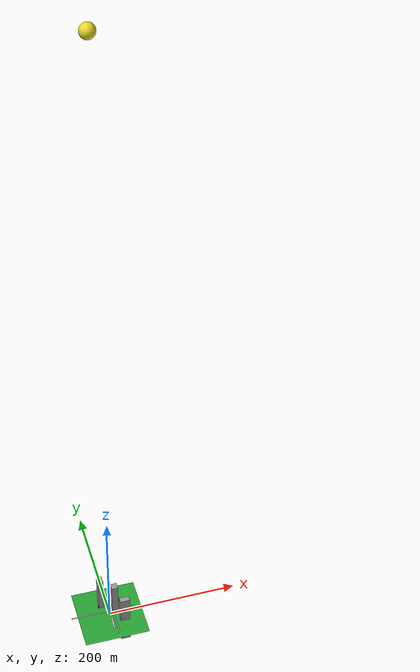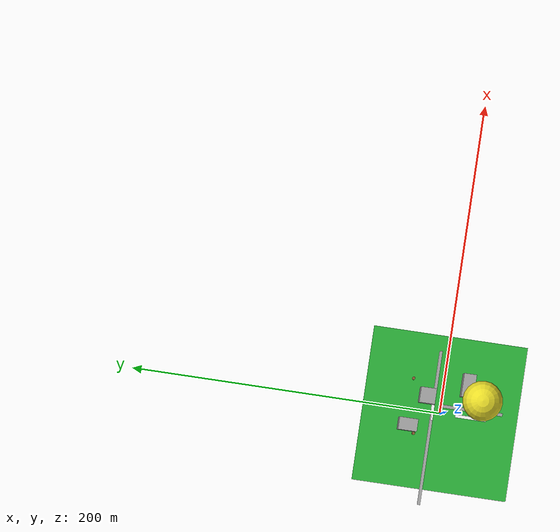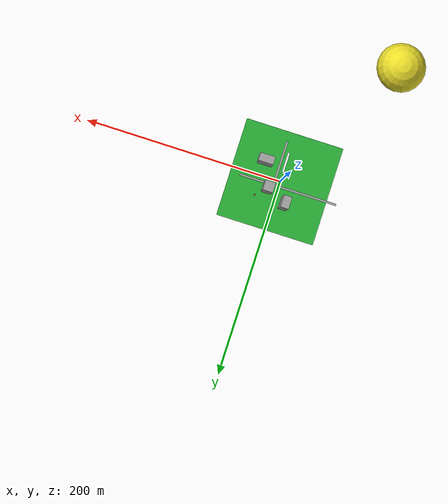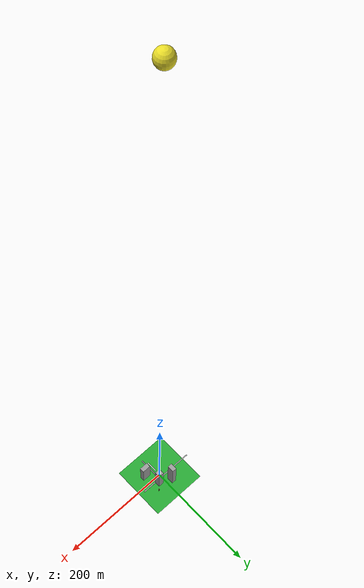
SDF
<?xml version="1.0" ?>
<sdf version="1.6">
  <world name="default">

    <!-- Define the sun -->
    <model name="sun">
      <pose>0 0 1000 0 0 0</pose>
      <link name="link">
        <visual name="visual">
          <geometry>
            <sphere>
              <radius>10</radius>
            </sphere>
          </geometry>
          <material>
            <script>
              <uri>model://sun/materials/scripts</uri>
              <uri>model://sun/materials/textures</uri>
              <name>sun/yellow</name>
            </script>
          </material>
        </visual>
      </link>
    </model>

    <!-- Define buildings -->
    <model name="building1">
      <pose>10 10 0 0 0 0</pose>
      <link name="link">
        <visual name="visual">
          <geometry>
            <box>
              <size>10 10 100</size>
            </box>
          </geometry>
          <material>
            <script>
              <uri>model://building1/materials/scripts</uri>
              <uri>model://building1/materials/textures</uri>
              <name>building1/gray</name>
            </script>
          </material>
        </visual>
      </link>
    </model>

    <model name="building2">
      <pose>-10 20 0 0 0 0</pose>
      <link name="link">
        <visual name="visual">
          <geometry>
            <box>
              <size>8 12 120</size>
            </box>
          </geometry>
          <material>
            <script>
              <uri>model://building2/materials/scripts</uri>
              <uri>model://building2/materials/textures</uri>
              <name>building2/gray</name>
            </script>
          </material>
        </visual>
      </link>
    </model>

    <!-- Add more buildings -->
    <model name="building3">
      <pose>20 -15 0 0 0 0</pose>
      <link name="link">
        <visual name="visual">
          <geometry>
            <box>
              <size>15 8 90</size>
            </box>
          </geometry>
          <material>
            <script>
              <uri>model://building3/materials/scripts</uri>
              <uri>model://building3/materials/textures</uri>
              <name>building3/gray</name>
            </script>
          </material>
        </visual>
      </link>
    </model>

    <!-- Define grass -->
    <model name="grass">
      <pose>0 0 0 0 0 0</pose>
      <link name="link">
        <visual name="visual">
          <geometry>
            <box>
              <size>100 100 0.01</size>
            </box>
          </geometry>
          <material>
            <script>
              <uri>model://grass/materials/scripts</uri>
              <uri>model://grass/materials/textures</uri>
              <name>grass/green</name>
            </script>
          </material>
        </visual>
      </link>
    </model>

    <!-- Define trees -->
    <model name="tree1">
      <pose>-15 15 0 0 0 0</pose>
      <link name="link">
        <visual name="visual">
          <geometry>
            <cylinder>
              <radius>1</radius>
              <length>10</length>
            </cylinder>
          </geometry>
          <material>
            <script>
              <uri>model://tree1/materials/scripts</uri>
              <uri>model://tree1/materials/textures</uri>
              <name>tree1/brown</name>
            </script>
          </material>
        </visual>
      </link>
    </model>

    <model name="tree2">
      <pose>20 20 0 0 0 0</pose>
      <link name="link">
        <visual name="visual">
          <geometry>
            <cylinder>
              <radius>1</radius>
              <length>12</length>
            </cylinder>
          </geometry>
          <material>
            <script>
              <uri>model://tree2/materials/scripts</uri>
              <uri>model://tree2/materials/textures</uri>
              <name>tree2/brown</name>
            </script>
          </material>
        </visual>
      </link>
    </model>

    <!-- Define footpaths -->
    <model name="footpath1">
      <pose>-10 5 0 0 0 0</pose>
      <link name="link">
        <visual name="visual">
          <geometry>
            <box>
              <size>100 2 0.1</size>
            </box>
          </geometry>
          <material>
            <script>
              <uri>model://footpath1/materials/scripts</uri>
              <uri>model://footpath1/materials/textures</uri>
              <name>footpath1/gray</name>
            </script>
          </material>
        </visual>
      </link>
    </model>

    <model name="footpath2">
      <pose>5 -20 0 0 0 0</pose>
      <link name="link">
        <visual name="visual">
          <geometry>
            <box>
              <size>2 40 0.1</size>
            </box>
          </geometry>
          <material>
            <script>
              <uri>model://footpath2/materials/scripts</uri>
              <uri>model://footpath2/materials/textures</uri>
              <name>footpath2/gray</name>
            </script>
          </material>
        </visual>
      </link>
    </model>

    <!-- Define zebra crossings -->
    <model name="zebra_crossing1">
      <pose>0 5 0 0 0 0</pose>
      <link name="link">
        <visual name="visual">
          <geometry>
            <box>
              <size>10 2 0.1</size>
            </box>
          </geometry>
          <material>
            <script>
              <uri>model://zebra_crossing1/materials/scripts</uri>
              <uri>model://zebra_crossing1/materials/textures</uri>
              <name>zebra_crossing1/white</name>
            </script>
          </material>
        </visual>
      </link>
    </model>

    <model name="zebra_crossing2">
      <pose>0 -20 0 0 0 0</pose>
      <link name="link">
        <visual name="visual">
          <geometry>
            <box>
              <size>2 20 0.1</size>
            </box>
          </geometry>
          <material>
            <script>
              <uri>model://zebra_crossing2/materials/scripts</uri>
              <uri>model://zebra_crossing2/materials/textures</uri>
              <name>zebra_crossing2/white</name>
            </script>
          </material>
        </visual>
      </link>
    </model>

  </world>
</sdf>
